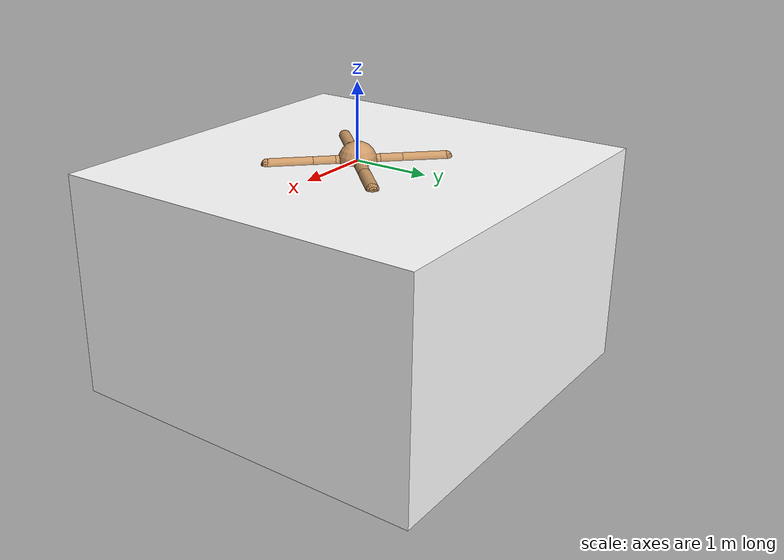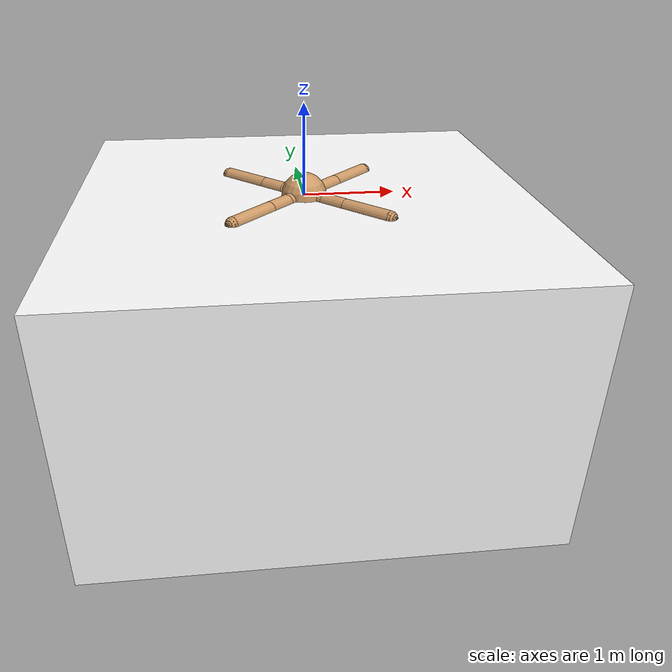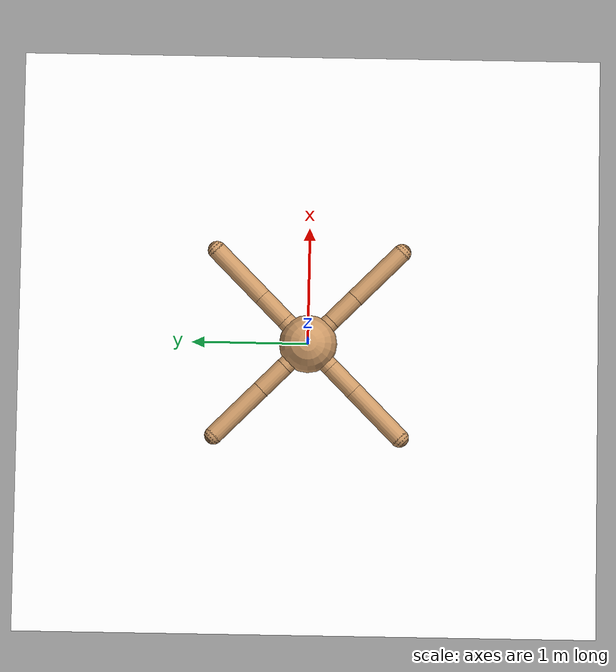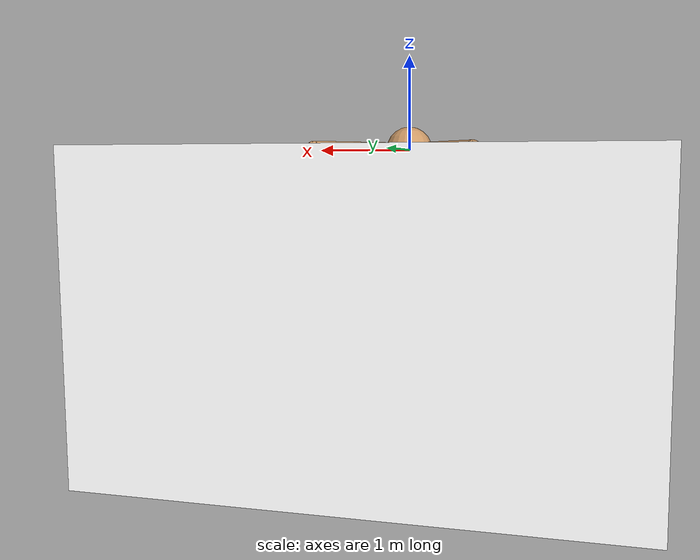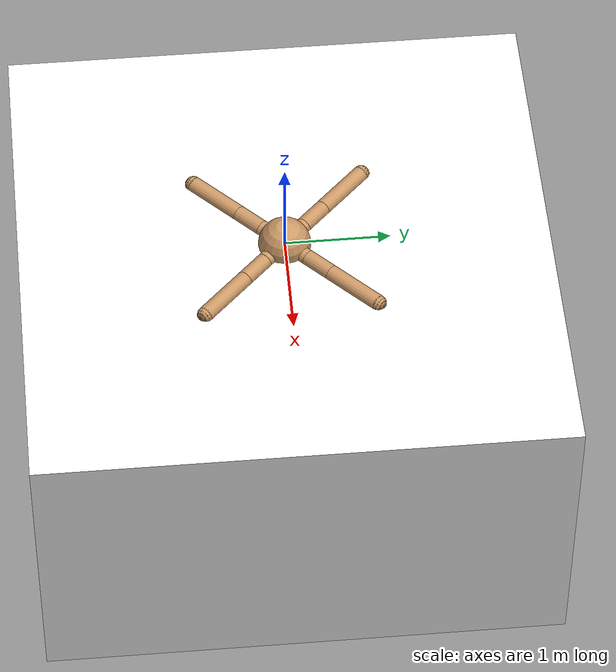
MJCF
<mujoco model="arena">
  <compiler angle="degree" coordinate="local" inertiafromgeom="true"/>
  <option timestep="0.01" iterations="4" />
  <default>
    <joint armature="1" damping="1" limited="true"/>
    <geom contype="0" conaffinity="0" condim="3" density="5.0" friction="1 0.5 0.5" rgba="1.0 1.0 1.0 1"/>
  </default>
  <asset>
    <texture builtin="gradient" height="100" rgb1=".4 .5 .6" rgb2="0 0 0" type="skybox" width="100"/>
    <texture builtin="gradient" height="100" rgb1="1 0 0" rgb2="1 1 0" type="cube" width="100" name="tex_red"/>
    <texture builtin="gradient" height="100" rgb1="0.5 0 1" rgb2="0 0 1" type="cube" width="100" name="tex_blue"/>
    <texture builtin="checker" height="100" name="texplane" rgb1="0 0 0" rgb2="0.8 0.8 0.8" type="2d" width="100"/>
    <material name="m_arena" reflectance="0.5" shininess="1" specular="1" texrepeat="10 10" texture="texplane"/>
    <material name="m_red" texture="tex_red" texuniform="true"/>
    <material name="m_blue" texture="tex_blue" texuniform="true"/>
  </asset>
  <worldbody>
    <light cutoff="100" diffuse="1 1 1" dir="-0 0 -1.3" directional="true" exponent="1" pos="0 0 1.3" specular=".1 .1 .1"/>
    <geom conaffinity="4" contype="16" condim="3" material="m_arena" name="arena_floor" pos="0 0 -1.5" size="2.5 2.5 1.5" type="box" rgba="1 1 1 1"/>
    <camera name="free_cam" mode="track" pos="0 -8 8" xyaxes="1 0 0 0 0.7 0.7"/>
    <body name="red_the_red_one" pos="0 0 0">
      <camera name="red_track" mode="trackcom" pos="0 -4 4" xyaxes="1 0 0 0 0.7 0.7"/>
      <geom name="red_torso_geom" contype="1" conaffinity="16" pos="0 0 0" size="0.25" material="m_red" rgba=".8 .6 .4 1" type="sphere"/>
      <joint armature="0" damping="0" limited="false" margin="0.01" name="red_root" pos="0 0 0" type="free"/>
      <body name="red_front_left_leg" pos="0 0 0">
        <geom fromto="0.0 0.0 0.0 0.2 0.2 0.0" name="red_aux_1_geom" size="0.08" type="capsule" material="m_red" rgba=".8 .6 .4 1"/>
        <body name="red_aux_1" pos="0.2 0.2 0">
          <joint axis="0 0 1" name="red_hip_1" pos="0.0 0.0 0.0" range="-30 30" type="hinge"/>
          <geom fromto="0.0 0.0 0.0 0.2 0.2 0.0" conaffinity="16" name="red_left_leg_geom" size="0.08" type="capsule" material="m_red" rgba=".8 .6 .4 1"/>
          <body pos="0.2 0.2 0">
            <joint axis="-1 1 0" name="red_ankle_1" pos="0.0 0.0 0.0" range="30 70" type="hinge"/>
            <geom fromto="0.0 0.0 0.0 0.4 0.4 0.0" conaffinity="16" name="red_left_ankle_geom" size="0.08" type="capsule" material="m_red" rgba=".8 .6 .4 1"/>
            <geom name="red_left_foot_geom" contype="2" conaffinity="16" pos="0.4 0.4 0" size="0.08" type="sphere" mass="0" material="m_red" rgba=".8 .6 .4 1"/>
          </body>
        </body>
      </body>
      <body name="red_front_right_leg" pos="0 0 0">
        <geom fromto="0.0 0.0 0.0 -0.2 0.2 0.0" name="red_aux_2_geom" size="0.08" type="capsule" material="m_red" rgba=".8 .6 .4 1"/>
        <body name="red_aux_2" pos="-0.2 0.2 0">
          <joint axis="0 0 1" name="red_hip_2" pos="0.0 0.0 0.0" range="-30 30" type="hinge"/>
          <geom fromto="0.0 0.0 0.0 -0.2 0.2 0.0" conaffinity="16" name="red_right_leg_geom" size="0.08" type="capsule" material="m_red" rgba=".8 .6 .4 1"/>
          <body pos="-0.2 0.2 0">
            <joint axis="1 1 0" name="red_ankle_2" pos="0.0 0.0 0.0" range="-70 -30" type="hinge"/>
            <geom fromto="0.0 0.0 0.0 -0.4 0.4 0.0" conaffinity="16" name="red_right_ankle_geom" size="0.08" type="capsule" material="m_red" rgba=".8 .6 .4 1"/>
            <geom name="red_right_foot_geom" contype="2" conaffinity="16" pos="-0.4 0.4 0" size="0.08" type="sphere" mass="0" material="m_red" rgba=".8 .6 .4 1"/>
          </body>
        </body>
      </body>
      <body name="red_back_leg" pos="0 0 0">
        <geom fromto="0.0 0.0 0.0 -0.2 -0.2 0.0" name="red_aux_3_geom" size="0.08" type="capsule" material="m_red" rgba=".8 .6 .4 1"/>
        <body name="red_aux_3" pos="-0.2 -0.2 0">
          <joint axis="0 0 1" name="red_hip_3" pos="0.0 0.0 0.0" range="-30 30" type="hinge"/>
          <geom fromto="0.0 0.0 0.0 -0.2 -0.2 0.0" conaffinity="16" name="red_back_leg_geom" size="0.08" type="capsule" material="m_red" rgba=".8 .6 .4 1"/>
          <body pos="-0.2 -0.2 0">
            <joint axis="-1 1 0" name="red_ankle_3" pos="0.0 0.0 0.0" range="-70 -30" type="hinge"/>
            <geom fromto="0.0 0.0 0.0 -0.4 -0.4 0.0" conaffinity="16" name="red_third_ankle_geom" size="0.08" type="capsule" material="m_red" rgba=".8 .6 .4 1"/>
            <geom name="red_third_foot_geom" contype="2" conaffinity="16" pos="-0.4 -0.4 0" size="0.08" type="sphere" mass="0" material="m_red" rgba=".8 .6 .4 1"/>
          </body>
        </body>
      </body>
      <body name="red_right_back_leg" pos="0 0 0">
        <geom fromto="0.0 0.0 0.0 0.2 -0.2 0.0" name="red_aux_4_geom" size="0.08" type="capsule" material="m_red" rgba=".8 .6 .4 1"/>
        <body name="red_aux_4" pos="0.2 -0.2 0">
          <joint axis="0 0 1" name="red_hip_4" pos="0.0 0.0 0.0" range="-30 30" type="hinge"/>
          <geom fromto="0.0 0.0 0.0 0.2 -0.2 0.0" conaffinity="16" name="red_rightback_leg_geom" size="0.08" type="capsule" material="m_red" rgba=".8 .6 .4 1"/>
          <body pos="0.2 -0.2 0">
            <joint axis="1 1 0" name="red_ankle_4" pos="0.0 0.0 0.0" range="30 70" type="hinge"/>
            <geom fromto="0.0 0.0 0.0 0.4 -0.4 0.0" conaffinity="16" name="red_fourth_ankle_geom" size="0.08" type="capsule" material="m_red" rgba=".8 .6 .4 1"/>
            <geom name="red_fourth_foot_geom" contype="2" conaffinity="16" pos="0.4 -0.4 0" size="0.08" type="sphere" mass="0" material="m_red" rgba=".8 .6 .4 1"/>
          </body>
        </body>
      </body>
    </body>

  </worldbody>
  <actuator>
    <motor ctrllimited="true" ctrlrange="-1.0 1.0" joint="red_hip_4" gear="450"/>
    <motor ctrllimited="true" ctrlrange="-1.0 1.0" joint="red_ankle_4" gear="450"/>
    <motor ctrllimited="true" ctrlrange="-1.0 1.0" joint="red_hip_1" gear="450"/>
    <motor ctrllimited="true" ctrlrange="-1.0 1.0" joint="red_ankle_1" gear="450"/>
    <motor ctrllimited="true" ctrlrange="-1.0 1.0" joint="red_hip_2" gear="450"/>
    <motor ctrllimited="true" ctrlrange="-1.0 1.0" joint="red_ankle_2" gear="450"/>
    <motor ctrllimited="true" ctrlrange="-1.0 1.0" joint="red_hip_3" gear="450"/>
    <motor ctrllimited="true" ctrlrange="-1.0 1.0" joint="red_ankle_3" gear="450"/>

  </actuator>
</mujoco>
